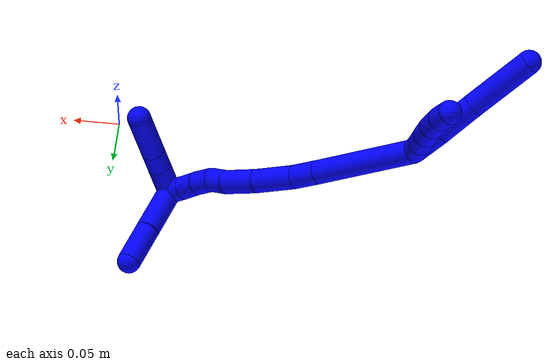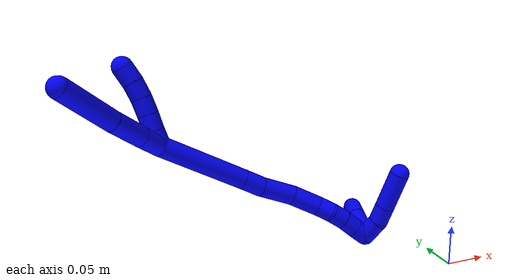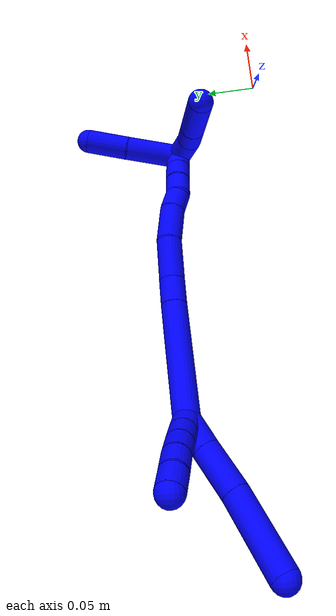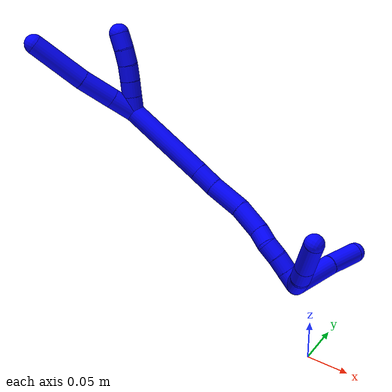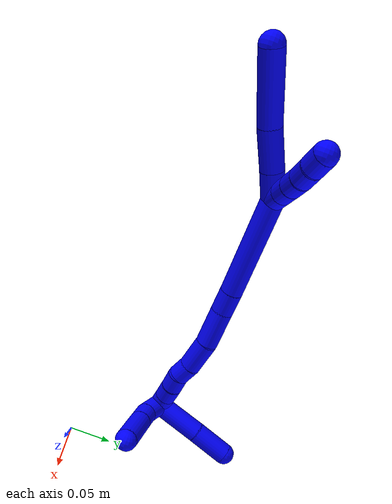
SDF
<sdf version="1.7">
 <world name="default">
  <model name="1">
   <static>0</static>
   <link name="1">
    <collision name="collision-cylinder-e_1_2_8">
     <pose>-0.009125 0.001832 0.013126 -0.1387 -0.60296 0.043192</pose>
     <geometry><cylinder><radius>0.0125</radius><length>0.032181</length></cylinder></geometry>
     <surface>
      <friction><ode><mu>1.16</mu><mu2>1.16</mu2><slip1>0</slip1><slip2>0</slip2></ode></friction>
      <contact><ode><kp>1e+06</kp><kd>1</kd><max_vel>0</max_vel><min_depth>0.001</min_depth></ode></contact>
     </surface>
    </collision>
    <visual name="visual-cylinder-e_1_2_8">
     <pose>-0.009125 0.001832 0.013126 -0.1387 -0.60296 0.043192</pose>
     <geometry><cylinder><radius>0.0125</radius><length>0.032181</length></cylinder></geometry>
     <material><ambient>0 0 1 1</ambient></material>
    </visual>
    <collision name="collision-cylinder-e_2_8_9">
     <pose>-0.031546 0.006201 0.043881 -0.142893 -0.641277 0.047526</pose>
     <geometry><cylinder><radius>0.0125</radius><length>0.044452</length></cylinder></geometry>
     <surface>
      <friction><ode><mu>1.16</mu><mu2>1.16</mu2><slip1>0</slip1><slip2>0</slip2></ode></friction>
      <contact><ode><kp>1e+06</kp><kd>1</kd><max_vel>0</max_vel><min_depth>0.001</min_depth></ode></contact>
     </surface>
    </collision>
    <visual name="visual-cylinder-e_2_8_9">
     <pose>-0.031546 0.006201 0.043881 -0.142893 -0.641277 0.047526</pose>
     <geometry><cylinder><radius>0.0125</radius><length>0.044452</length></cylinder></geometry>
     <material><ambient>0 0 1 1</ambient></material>
    </visual>
    <collision name="collision-cylinder-e_3_9_6">
     <pose>-0.066682 0.009643 0.090969 -0.030737 -0.637733 0.010148</pose>
     <geometry><cylinder><radius>0.0125</radius><length>0.073366</length></cylinder></geometry>
     <surface>
      <friction><ode><mu>1.16</mu><mu2>1.16</mu2><slip1>0</slip1><slip2>0</slip2></ode></friction>
      <contact><ode><kp>1e+06</kp><kd>1</kd><max_vel>0</max_vel><min_depth>0.001</min_depth></ode></contact>
     </surface>
    </collision>
    <visual name="visual-cylinder-e_3_9_6">
     <pose>-0.066682 0.009643 0.090969 -0.030737 -0.637733 0.010148</pose>
     <geometry><cylinder><radius>0.0125</radius><length>0.073366</length></cylinder></geometry>
     <material><ambient>0 0 1 1</ambient></material>
    </visual>
    <collision name="collision-cylinder-e_1_2_10">
     <pose>-0.005835 -0.006661 0.004646 0.961789 -0.623082 -0.332925</pose>
     <geometry><cylinder><radius>0.0125</radius><length>0.02</length></cylinder></geometry>
     <surface>
      <friction><ode><mu>1.16</mu><mu2>1.16</mu2><slip1>0</slip1><slip2>0</slip2></ode></friction>
      <contact><ode><kp>1e+06</kp><kd>1</kd><max_vel>0</max_vel><min_depth>0.001</min_depth></ode></contact>
     </surface>
    </collision>
    <visual name="visual-cylinder-e_1_2_10">
     <pose>-0.005835 -0.006661 0.004646 0.961789 -0.623082 -0.332925</pose>
     <geometry><cylinder><radius>0.0125</radius><length>0.02</length></cylinder></geometry>
     <material><ambient>0 0 1 1</ambient></material>
    </visual>
    <collision name="collision-cylinder-e_2_10_11">
     <pose>-0.017892 -0.019867 0.013588 0.989898 -0.67145 -0.372321</pose>
     <geometry><cylinder><radius>0.0125</radius><length>0.02</length></cylinder></geometry>
     <surface>
      <friction><ode><mu>1.16</mu><mu2>1.16</mu2><slip1>0</slip1><slip2>0</slip2></ode></friction>
      <contact><ode><kp>1e+06</kp><kd>1</kd><max_vel>0</max_vel><min_depth>0.001</min_depth></ode></contact>
     </surface>
    </collision>
    <visual name="visual-cylinder-e_2_10_11">
     <pose>-0.017892 -0.019867 0.013588 0.989898 -0.67145 -0.372321</pose>
     <geometry><cylinder><radius>0.0125</radius><length>0.02</length></cylinder></geometry>
     <material><ambient>0 0 1 1</ambient></material>
    </visual>
    <collision name="collision-cylinder-e_3_11_12">
     <pose>-0.0302 -0.032865 0.022499 0.949936 -0.654451 -0.345607</pose>
     <geometry><cylinder><radius>0.0125</radius><length>0.02</length></cylinder></geometry>
     <surface>
      <friction><ode><mu>1.16</mu><mu2>1.16</mu2><slip1>0</slip1><slip2>0</slip2></ode></friction>
      <contact><ode><kp>1e+06</kp><kd>1</kd><max_vel>0</max_vel><min_depth>0.001</min_depth></ode></contact>
     </surface>
    </collision>
    <visual name="visual-cylinder-e_3_11_12">
     <pose>-0.0302 -0.032865 0.022499 0.949936 -0.654451 -0.345607</pose>
     <geometry><cylinder><radius>0.0125</radius><length>0.02</length></cylinder></geometry>
     <material><ambient>0 0 1 1</ambient></material>
    </visual>
    <collision name="collision-cylinder-e_4_12_13">
     <pose>-0.042101 -0.045256 0.032678 0.817927 -0.620382 -0.276075</pose>
     <geometry><cylinder><radius>0.0125</radius><length>0.02</length></cylinder></geometry>
     <surface>
      <friction><ode><mu>1.16</mu><mu2>1.16</mu2><slip1>0</slip1><slip2>0</slip2></ode></friction>
      <contact><ode><kp>1e+06</kp><kd>1</kd><max_vel>0</max_vel><min_depth>0.001</min_depth></ode></contact>
     </surface>
    </collision>
    <visual name="visual-cylinder-e_4_12_13">
     <pose>-0.042101 -0.045256 0.032678 0.817927 -0.620382 -0.276075</pose>
     <geometry><cylinder><radius>0.0125</radius><length>0.02</length></cylinder></geometry>
     <material><ambient>0 0 1 1</ambient></material>
    </visual>
    <collision name="collision-cylinder-e_5_13_5">
     <pose>-0.052842 -0.05702 0.044705 0.733651 -0.515193 -0.201756</pose>
     <geometry><cylinder><radius>0.0125</radius><length>0.02</length></cylinder></geometry>
     <surface>
      <friction><ode><mu>1.16</mu><mu2>1.16</mu2><slip1>0</slip1><slip2>0</slip2></ode></friction>
      <contact><ode><kp>1e+06</kp><kd>1</kd><max_vel>0</max_vel><min_depth>0.001</min_depth></ode></contact>
     </surface>
    </collision>
    <visual name="visual-cylinder-e_5_13_5">
     <pose>-0.052842 -0.05702 0.044705 0.733651 -0.515193 -0.201756</pose>
     <geometry><cylinder><radius>0.0125</radius><length>0.02</length></cylinder></geometry>
     <material><ambient>0 0 1 1</ambient></material>
    </visual>
    <collision name="collision-cylinder-e_1_2_14">
     <pose>0.013713 0.009169 -0.053504 -2.97187 0.247445 -1.94175</pose>
     <geometry><cylinder><radius>0.0125</radius><length>0.111979</length></cylinder></geometry>
     <surface>
      <friction><ode><mu>1.16</mu><mu2>1.16</mu2><slip1>0</slip1><slip2>0</slip2></ode></friction>
      <contact><ode><kp>1e+06</kp><kd>1</kd><max_vel>0</max_vel><min_depth>0.001</min_depth></ode></contact>
     </surface>
    </collision>
    <visual name="visual-cylinder-e_1_2_14">
     <pose>0.013713 0.009169 -0.053504 -2.97187 0.247445 -1.94175</pose>
     <geometry><cylinder><radius>0.0125</radius><length>0.111979</length></cylinder></geometry>
     <material><ambient>0 0 1 1</ambient></material>
    </visual>
    <collision name="collision-cylinder-e_2_14_15">
     <pose>0.03063 0.020871 -0.119908 -2.94769 0.239042 -1.78016</pose>
     <geometry><cylinder><radius>0.0125</radius><length>0.027061</length></cylinder></geometry>
     <surface>
      <friction><ode><mu>1.16</mu><mu2>1.16</mu2><slip1>0</slip1><slip2>0</slip2></ode></friction>
      <contact><ode><kp>1e+06</kp><kd>1</kd><max_vel>0</max_vel><min_depth>0.001</min_depth></ode></contact>
     </surface>
    </collision>
    <visual name="visual-cylinder-e_2_14_15">
     <pose>0.03063 0.020871 -0.119908 -2.94769 0.239042 -1.78016</pose>
     <geometry><cylinder><radius>0.0125</radius><length>0.027061</length></cylinder></geometry>
     <material><ambient>0 0 1 1</ambient></material>
    </visual>
    <collision name="collision-cylinder-e_3_15_16">
     <pose>0.036812 0.026161 -0.154075 -3.01269 0.138 -1.63913</pose>
     <geometry><cylinder><radius>0.0125</radius><length>0.043302</length></cylinder></geometry>
     <surface>
      <friction><ode><mu>1.16</mu><mu2>1.16</mu2><slip1>0</slip1><slip2>0</slip2></ode></friction>
      <contact><ode><kp>1e+06</kp><kd>1</kd><max_vel>0</max_vel><min_depth>0.001</min_depth></ode></contact>
     </surface>
    </collision>
    <visual name="visual-cylinder-e_3_15_16">
     <pose>0.036812 0.026161 -0.154075 -3.01269 0.138 -1.63913</pose>
     <geometry><cylinder><radius>0.0125</radius><length>0.043302</length></cylinder></geometry>
     <material><ambient>0 0 1 1</ambient></material>
    </visual>
    <collision name="collision-cylinder-e_4_16_17">
     <pose>0.042003 0.03459 -0.192954 -2.82998 0.118984 -0.724876</pose>
     <geometry><cylinder><radius>0.0125</radius><length>0.03727</length></cylinder></geometry>
     <surface>
      <friction><ode><mu>1.16</mu><mu2>1.16</mu2><slip1>0</slip1><slip2>0</slip2></ode></friction>
      <contact><ode><kp>1e+06</kp><kd>1</kd><max_vel>0</max_vel><min_depth>0.001</min_depth></ode></contact>
     </surface>
    </collision>
    <visual name="visual-cylinder-e_4_16_17">
     <pose>0.042003 0.03459 -0.192954 -2.82998 0.118984 -0.724876</pose>
     <geometry><cylinder><radius>0.0125</radius><length>0.03727</length></cylinder></geometry>
     <material><ambient>0 0 1 1</ambient></material>
    </visual>
    <collision name="collision-cylinder-e_5_17_18">
     <pose>0.044309 0.04485 -0.219534 -2.66883 0.009392 -0.038986</pose>
     <geometry><cylinder><radius>0.0125</radius><length>0.020147</length></cylinder></geometry>
     <surface>
      <friction><ode><mu>1.16</mu><mu2>1.16</mu2><slip1>0</slip1><slip2>0</slip2></ode></friction>
      <contact><ode><kp>1e+06</kp><kd>1</kd><max_vel>0</max_vel><min_depth>0.001</min_depth></ode></contact>
     </surface>
    </collision>
    <visual name="visual-cylinder-e_5_17_18">
     <pose>0.044309 0.04485 -0.219534 -2.66883 0.009392 -0.038986</pose>
     <geometry><cylinder><radius>0.0125</radius><length>0.020147</length></cylinder></geometry>
     <material><ambient>0 0 1 1</ambient></material>
    </visual>
    <collision name="collision-cylinder-e_6_18_19">
     <pose>0.047212 0.052435 -0.237659 -2.82516 0.283597 -1.45979</pose>
     <geometry><cylinder><radius>0.0125</radius><length>0.020074</length></cylinder></geometry>
     <surface>
      <friction><ode><mu>1.16</mu><mu2>1.16</mu2><slip1>0</slip1><slip2>0</slip2></ode></friction>
      <contact><ode><kp>1e+06</kp><kd>1</kd><max_vel>0</max_vel><min_depth>0.001</min_depth></ode></contact>
     </surface>
    </collision>
    <visual name="visual-cylinder-e_6_18_19">
     <pose>0.047212 0.052435 -0.237659 -2.82516 0.283597 -1.45979</pose>
     <geometry><cylinder><radius>0.0125</radius><length>0.020074</length></cylinder></geometry>
     <material><ambient>0 0 1 1</ambient></material>
    </visual>
    <collision name="collision-cylinder-e_7_19_20">
     <pose>0.05361 0.059064 -0.255489 -2.74517 0.364636 -1.48528</pose>
     <geometry><cylinder><radius>0.0125</radius><length>0.020127</length></cylinder></geometry>
     <surface>
      <friction><ode><mu>1.16</mu><mu2>1.16</mu2><slip1>0</slip1><slip2>0</slip2></ode></friction>
      <contact><ode><kp>1e+06</kp><kd>1</kd><max_vel>0</max_vel><min_depth>0.001</min_depth></ode></contact>
     </surface>
    </collision>
    <visual name="visual-cylinder-e_7_19_20">
     <pose>0.05361 0.059064 -0.255489 -2.74517 0.364636 -1.48528</pose>
     <geometry><cylinder><radius>0.0125</radius><length>0.020127</length></cylinder></geometry>
     <material><ambient>0 0 1 1</ambient></material>
    </visual>
    <collision name="collision-cylinder-e_8_20_1">
     <pose>0.060459 0.066335 -0.27291 -2.74712 0.331391 -1.39361</pose>
     <geometry><cylinder><radius>0.0125</radius><length>0.020041</length></cylinder></geometry>
     <surface>
      <friction><ode><mu>1.16</mu><mu2>1.16</mu2><slip1>0</slip1><slip2>0</slip2></ode></friction>
      <contact><ode><kp>1e+06</kp><kd>1</kd><max_vel>0</max_vel><min_depth>0.001</min_depth></ode></contact>
     </surface>
    </collision>
    <visual name="visual-cylinder-e_8_20_1">
     <pose>0.060459 0.066335 -0.27291 -2.74712 0.331391 -1.39361</pose>
     <geometry><cylinder><radius>0.0125</radius><length>0.020041</length></cylinder></geometry>
     <material><ambient>0 0 1 1</ambient></material>
    </visual>
    <collision name="collision-cylinder-e_1_1_21">
     <pose>0.049784 0.067713 -0.285316 2.5874 -1.27136 -2.40577</pose>
     <geometry><cylinder><radius>0.0125</radius><length>0.029167</length></cylinder></geometry>
     <surface>
      <friction><ode><mu>1.16</mu><mu2>1.16</mu2><slip1>0</slip1><slip2>0</slip2></ode></friction>
      <contact><ode><kp>1e+06</kp><kd>1</kd><max_vel>0</max_vel><min_depth>0.001</min_depth></ode></contact>
     </surface>
    </collision>
    <visual name="visual-cylinder-e_1_1_21">
     <pose>0.049784 0.067713 -0.285316 2.5874 -1.27136 -2.40577</pose>
     <geometry><cylinder><radius>0.0125</radius><length>0.029167</length></cylinder></geometry>
     <material><ambient>0 0 1 1</ambient></material>
    </visual>
    <collision name="collision-cylinder-e_2_21_22">
     <pose>0.025732 0.060612 -0.290329 1.84398 -1.10997 -1.37072</pose>
     <geometry><cylinder><radius>0.0125</radius><length>0.022592</length></cylinder></geometry>
     <surface>
      <friction><ode><mu>1.16</mu><mu2>1.16</mu2><slip1>0</slip1><slip2>0</slip2></ode></friction>
      <contact><ode><kp>1e+06</kp><kd>1</kd><max_vel>0</max_vel><min_depth>0.001</min_depth></ode></contact>
     </surface>
    </collision>
    <visual name="visual-cylinder-e_2_21_22">
     <pose>0.025732 0.060612 -0.290329 1.84398 -1.10997 -1.37072</pose>
     <geometry><cylinder><radius>0.0125</radius><length>0.022592</length></cylinder></geometry>
     <material><ambient>0 0 1 1</ambient></material>
    </visual>
    <collision name="collision-cylinder-e_3_22_4">
     <pose>-0.005973 0.045387 -0.294492 1.8348 -1.10835 -1.35964</pose>
     <geometry><cylinder><radius>0.0125</radius><length>0.048241</length></cylinder></geometry>
     <surface>
      <friction><ode><mu>1.16</mu><mu2>1.16</mu2><slip1>0</slip1><slip2>0</slip2></ode></friction>
      <contact><ode><kp>1e+06</kp><kd>1</kd><max_vel>0</max_vel><min_depth>0.001</min_depth></ode></contact>
     </surface>
    </collision>
    <visual name="visual-cylinder-e_3_22_4">
     <pose>-0.005973 0.045387 -0.294492 1.8348 -1.10835 -1.35964</pose>
     <geometry><cylinder><radius>0.0125</radius><length>0.048241</length></cylinder></geometry>
     <material><ambient>0 0 1 1</ambient></material>
    </visual>
    <collision name="collision-cylinder-e_1_1_23">
     <pose>0.077363 0.046111 -0.288539 1.85153 0.502318 0.657296</pose>
     <geometry><cylinder><radius>0.0125</radius><length>0.056678</length></cylinder></geometry>
     <surface>
      <friction><ode><mu>1.16</mu><mu2>1.16</mu2><slip1>0</slip1><slip2>0</slip2></ode></friction>
      <contact><ode><kp>1e+06</kp><kd>1</kd><max_vel>0</max_vel><min_depth>0.001</min_depth></ode></contact>
     </surface>
    </collision>
    <visual name="visual-cylinder-e_1_1_23">
     <pose>0.077363 0.046111 -0.288539 1.85153 0.502318 0.657296</pose>
     <geometry><cylinder><radius>0.0125</radius><length>0.056678</length></cylinder></geometry>
     <material><ambient>0 0 1 1</ambient></material>
    </visual>
    <collision name="collision-cylinder-e_2_23_3">
     <pose>0.102591 0.004992 -0.301531 1.91116 0.564274 0.77848</pose>
     <geometry><cylinder><radius>0.0125</radius><length>0.043322</length></cylinder></geometry>
     <surface>
      <friction><ode><mu>1.16</mu><mu2>1.16</mu2><slip1>0</slip1><slip2>0</slip2></ode></friction>
      <contact><ode><kp>1e+06</kp><kd>1</kd><max_vel>0</max_vel><min_depth>0.001</min_depth></ode></contact>
     </surface>
    </collision>
    <visual name="visual-cylinder-e_2_23_3">
     <pose>0.102591 0.004992 -0.301531 1.91116 0.564274 0.77848</pose>
     <geometry><cylinder><radius>0.0125</radius><length>0.043322</length></cylinder></geometry>
     <material><ambient>0 0 1 1</ambient></material>
    </visual>
    <collision name="collision-sphere-3">
     <pose>0.114176 -0.012261 -0.307641 0 -0 0</pose>
     <geometry><sphere><radius>0.0125</radius></sphere></geometry>
     <surface>
      <friction><ode><mu>1.16</mu><mu2>1.16</mu2><slip1>0</slip1><slip2>0</slip2></ode></friction>
      <contact><ode><kp>1e+06</kp><kd>1</kd><max_vel>0</max_vel><min_depth>0.001</min_depth></ode></contact>
     </surface>
    </collision>
    <visual name="visual-sphere-3">
     <pose>0.114176 -0.012261 -0.307641 0 -0 0</pose>
     <geometry><sphere><radius>0.0125</radius></sphere></geometry>
     <material><ambient>0 0 1 1</ambient></material>
    </visual>
    <collision name="collision-sphere-23">
     <pose>0.091007 0.022245 -0.295421 0 -0 0</pose>
     <geometry><sphere><radius>0.0125</radius></sphere></geometry>
     <surface>
      <friction><ode><mu>1.16</mu><mu2>1.16</mu2><slip1>0</slip1><slip2>0</slip2></ode></friction>
      <contact><ode><kp>1e+06</kp><kd>1</kd><max_vel>0</max_vel><min_depth>0.001</min_depth></ode></contact>
     </surface>
    </collision>
    <visual name="visual-sphere-23">
     <pose>0.091007 0.022245 -0.295421 0 -0 0</pose>
     <geometry><sphere><radius>0.0125</radius></sphere></geometry>
     <material><ambient>0 0 1 1</ambient></material>
    </visual>
    <collision name="collision-sphere-4">
     <pose>-0.02756 0.034999 -0.2973 0 -0 0</pose>
     <geometry><sphere><radius>0.0125</radius></sphere></geometry>
     <surface>
      <friction><ode><mu>1.16</mu><mu2>1.16</mu2><slip1>0</slip1><slip2>0</slip2></ode></friction>
      <contact><ode><kp>1e+06</kp><kd>1</kd><max_vel>0</max_vel><min_depth>0.001</min_depth></ode></contact>
     </surface>
    </collision>
    <visual name="visual-sphere-4">
     <pose>-0.02756 0.034999 -0.2973 0 -0 0</pose>
     <geometry><sphere><radius>0.0125</radius></sphere></geometry>
     <material><ambient>0 0 1 1</ambient></material>
    </visual>
    <collision name="collision-sphere-22">
     <pose>0.015614 0.055775 -0.291684 0 -0 0</pose>
     <geometry><sphere><radius>0.0125</radius></sphere></geometry>
     <surface>
      <friction><ode><mu>1.16</mu><mu2>1.16</mu2><slip1>0</slip1><slip2>0</slip2></ode></friction>
      <contact><ode><kp>1e+06</kp><kd>1</kd><max_vel>0</max_vel><min_depth>0.001</min_depth></ode></contact>
     </surface>
    </collision>
    <visual name="visual-sphere-22">
     <pose>0.015614 0.055775 -0.291684 0 -0 0</pose>
     <geometry><sphere><radius>0.0125</radius></sphere></geometry>
     <material><ambient>0 0 1 1</ambient></material>
    </visual>
    <collision name="collision-sphere-21">
     <pose>0.035849 0.065449 -0.288974 0 -0 0</pose>
     <geometry><sphere><radius>0.0125</radius></sphere></geometry>
     <surface>
      <friction><ode><mu>1.16</mu><mu2>1.16</mu2><slip1>0</slip1><slip2>0</slip2></ode></friction>
      <contact><ode><kp>1e+06</kp><kd>1</kd><max_vel>0</max_vel><min_depth>0.001</min_depth></ode></contact>
     </surface>
    </collision>
    <visual name="visual-sphere-21">
     <pose>0.035849 0.065449 -0.288974 0 -0 0</pose>
     <geometry><sphere><radius>0.0125</radius></sphere></geometry>
     <material><ambient>0 0 1 1</ambient></material>
    </visual>
    <collision name="collision-sphere-1">
     <pose>0.063719 0.069977 -0.281657 0 -0 0</pose>
     <geometry><sphere><radius>0.0125</radius></sphere></geometry>
     <surface>
      <friction><ode><mu>1.16</mu><mu2>1.16</mu2><slip1>0</slip1><slip2>0</slip2></ode></friction>
      <contact><ode><kp>1e+06</kp><kd>1</kd><max_vel>0</max_vel><min_depth>0.001</min_depth></ode></contact>
     </surface>
    </collision>
    <visual name="visual-sphere-1">
     <pose>0.063719 0.069977 -0.281657 0 -0 0</pose>
     <geometry><sphere><radius>0.0125</radius></sphere></geometry>
     <material><ambient>0 0 1 1</ambient></material>
    </visual>
    <collision name="collision-sphere-11">
     <pose>-0.024113 -0.026412 0.017884 0 -0 0</pose>
     <geometry><sphere><radius>0.0125</radius></sphere></geometry>
     <surface>
      <friction><ode><mu>1.16</mu><mu2>1.16</mu2><slip1>0</slip1><slip2>0</slip2></ode></friction>
      <contact><ode><kp>1e+06</kp><kd>1</kd><max_vel>0</max_vel><min_depth>0.001</min_depth></ode></contact>
     </surface>
    </collision>
    <visual name="visual-sphere-11">
     <pose>-0.024113 -0.026412 0.017884 0 -0 0</pose>
     <geometry><sphere><radius>0.0125</radius></sphere></geometry>
     <material><ambient>0 0 1 1</ambient></material>
    </visual>
    <collision name="collision-sphere-10">
     <pose>-0.011671 -0.013322 0.009291 0 -0 0</pose>
     <geometry><sphere><radius>0.0125</radius></sphere></geometry>
     <surface>
      <friction><ode><mu>1.16</mu><mu2>1.16</mu2><slip1>0</slip1><slip2>0</slip2></ode></friction>
      <contact><ode><kp>1e+06</kp><kd>1</kd><max_vel>0</max_vel><min_depth>0.001</min_depth></ode></contact>
     </surface>
    </collision>
    <visual name="visual-sphere-10">
     <pose>-0.011671 -0.013322 0.009291 0 -0 0</pose>
     <geometry><sphere><radius>0.0125</radius></sphere></geometry>
     <material><ambient>0 0 1 1</ambient></material>
    </visual>
    <collision name="collision-sphere-6">
     <pose>-0.088522 0.010549 0.120428 0 -0 0</pose>
     <geometry><sphere><radius>0.0125</radius></sphere></geometry>
     <surface>
      <friction><ode><mu>1.16</mu><mu2>1.16</mu2><slip1>0</slip1><slip2>0</slip2></ode></friction>
      <contact><ode><kp>1e+06</kp><kd>1</kd><max_vel>0</max_vel><min_depth>0.001</min_depth></ode></contact>
     </surface>
    </collision>
    <visual name="visual-sphere-6">
     <pose>-0.088522 0.010549 0.120428 0 -0 0</pose>
     <geometry><sphere><radius>0.0125</radius></sphere></geometry>
     <material><ambient>0 0 1 1</ambient></material>
    </visual>
    <collision name="collision-sphere-9">
     <pose>-0.044842 0.008737 0.06151 0 -0 0</pose>
     <geometry><sphere><radius>0.0125</radius></sphere></geometry>
     <surface>
      <friction><ode><mu>1.16</mu><mu2>1.16</mu2><slip1>0</slip1><slip2>0</slip2></ode></friction>
      <contact><ode><kp>1e+06</kp><kd>1</kd><max_vel>0</max_vel><min_depth>0.001</min_depth></ode></contact>
     </surface>
    </collision>
    <visual name="visual-sphere-9">
     <pose>-0.044842 0.008737 0.06151 0 -0 0</pose>
     <geometry><sphere><radius>0.0125</radius></sphere></geometry>
     <material><ambient>0 0 1 1</ambient></material>
    </visual>
    <collision name="collision-sphere-2">
     <geometry><sphere><radius>0.0125</radius></sphere></geometry>
     <surface>
      <friction><ode><mu>1.16</mu><mu2>1.16</mu2><slip1>0</slip1><slip2>0</slip2></ode></friction>
      <contact><ode><kp>1e+06</kp><kd>1</kd><max_vel>0</max_vel><min_depth>0.001</min_depth></ode></contact>
     </surface>
    </collision>
    <visual name="visual-sphere-2">
     <geometry><sphere><radius>0.0125</radius></sphere></geometry>
     <material><ambient>0 0 1 1</ambient></material>
    </visual>
    <collision name="collision-sphere-19">
     <pose>0.050021 0.055433 -0.246817 0 -0 0</pose>
     <geometry><sphere><radius>0.0125</radius></sphere></geometry>
     <surface>
      <friction><ode><mu>1.16</mu><mu2>1.16</mu2><slip1>0</slip1><slip2>0</slip2></ode></friction>
      <contact><ode><kp>1e+06</kp><kd>1</kd><max_vel>0</max_vel><min_depth>0.001</min_depth></ode></contact>
     </surface>
    </collision>
    <visual name="visual-sphere-19">
     <pose>0.050021 0.055433 -0.246817 0 -0 0</pose>
     <geometry><sphere><radius>0.0125</radius></sphere></geometry>
     <material><ambient>0 0 1 1</ambient></material>
    </visual>
    <collision name="collision-sphere-8">
     <pose>-0.018249 0.003665 0.026252 0 -0 0</pose>
     <geometry><sphere><radius>0.0125</radius></sphere></geometry>
     <surface>
      <friction><ode><mu>1.16</mu><mu2>1.16</mu2><slip1>0</slip1><slip2>0</slip2></ode></friction>
      <contact><ode><kp>1e+06</kp><kd>1</kd><max_vel>0</max_vel><min_depth>0.001</min_depth></ode></contact>
     </surface>
    </collision>
    <visual name="visual-sphere-8">
     <pose>-0.018249 0.003665 0.026252 0 -0 0</pose>
     <geometry><sphere><radius>0.0125</radius></sphere></geometry>
     <material><ambient>0 0 1 1</ambient></material>
    </visual>
    <collision name="collision-sphere-12">
     <pose>-0.036288 -0.039318 0.027115 0 -0 0</pose>
     <geometry><sphere><radius>0.0125</radius></sphere></geometry>
     <surface>
      <friction><ode><mu>1.16</mu><mu2>1.16</mu2><slip1>0</slip1><slip2>0</slip2></ode></friction>
      <contact><ode><kp>1e+06</kp><kd>1</kd><max_vel>0</max_vel><min_depth>0.001</min_depth></ode></contact>
     </surface>
    </collision>
    <visual name="visual-sphere-12">
     <pose>-0.036288 -0.039318 0.027115 0 -0 0</pose>
     <geometry><sphere><radius>0.0125</radius></sphere></geometry>
     <material><ambient>0 0 1 1</ambient></material>
    </visual>
    <collision name="collision-sphere-13">
     <pose>-0.047915 -0.051193 0.038241 0 -0 0</pose>
     <geometry><sphere><radius>0.0125</radius></sphere></geometry>
     <surface>
      <friction><ode><mu>1.16</mu><mu2>1.16</mu2><slip1>0</slip1><slip2>0</slip2></ode></friction>
      <contact><ode><kp>1e+06</kp><kd>1</kd><max_vel>0</max_vel><min_depth>0.001</min_depth></ode></contact>
     </surface>
    </collision>
    <visual name="visual-sphere-13">
     <pose>-0.047915 -0.051193 0.038241 0 -0 0</pose>
     <geometry><sphere><radius>0.0125</radius></sphere></geometry>
     <material><ambient>0 0 1 1</ambient></material>
    </visual>
    <collision name="collision-sphere-5">
     <pose>-0.057769 -0.062846 0.051168 0 -0 0</pose>
     <geometry><sphere><radius>0.0125</radius></sphere></geometry>
     <surface>
      <friction><ode><mu>1.16</mu><mu2>1.16</mu2><slip1>0</slip1><slip2>0</slip2></ode></friction>
      <contact><ode><kp>1e+06</kp><kd>1</kd><max_vel>0</max_vel><min_depth>0.001</min_depth></ode></contact>
     </surface>
    </collision>
    <visual name="visual-sphere-5">
     <pose>-0.057769 -0.062846 0.051168 0 -0 0</pose>
     <geometry><sphere><radius>0.0125</radius></sphere></geometry>
     <material><ambient>0 0 1 1</ambient></material>
    </visual>
    <collision name="collision-sphere-14">
     <pose>0.027427 0.018338 -0.107009 0 -0 0</pose>
     <geometry><sphere><radius>0.0125</radius></sphere></geometry>
     <surface>
      <friction><ode><mu>1.16</mu><mu2>1.16</mu2><slip1>0</slip1><slip2>0</slip2></ode></friction>
      <contact><ode><kp>1e+06</kp><kd>1</kd><max_vel>0</max_vel><min_depth>0.001</min_depth></ode></contact>
     </surface>
    </collision>
    <visual name="visual-sphere-14">
     <pose>0.027427 0.018338 -0.107009 0 -0 0</pose>
     <geometry><sphere><radius>0.0125</radius></sphere></geometry>
     <material><ambient>0 0 1 1</ambient></material>
    </visual>
    <collision name="collision-sphere-15">
     <pose>0.033834 0.023404 -0.132808 0 -0 0</pose>
     <geometry><sphere><radius>0.0125</radius></sphere></geometry>
     <surface>
      <friction><ode><mu>1.16</mu><mu2>1.16</mu2><slip1>0</slip1><slip2>0</slip2></ode></friction>
      <contact><ode><kp>1e+06</kp><kd>1</kd><max_vel>0</max_vel><min_depth>0.001</min_depth></ode></contact>
     </surface>
    </collision>
    <visual name="visual-sphere-15">
     <pose>0.033834 0.023404 -0.132808 0 -0 0</pose>
     <geometry><sphere><radius>0.0125</radius></sphere></geometry>
     <material><ambient>0 0 1 1</ambient></material>
    </visual>
    <collision name="collision-sphere-16">
     <pose>0.039791 0.028917 -0.175342 0 -0 0</pose>
     <geometry><sphere><radius>0.0125</radius></sphere></geometry>
     <surface>
      <friction><ode><mu>1.16</mu><mu2>1.16</mu2><slip1>0</slip1><slip2>0</slip2></ode></friction>
      <contact><ode><kp>1e+06</kp><kd>1</kd><max_vel>0</max_vel><min_depth>0.001</min_depth></ode></contact>
     </surface>
    </collision>
    <visual name="visual-sphere-16">
     <pose>0.039791 0.028917 -0.175342 0 -0 0</pose>
     <geometry><sphere><radius>0.0125</radius></sphere></geometry>
     <material><ambient>0 0 1 1</ambient></material>
    </visual>
    <collision name="collision-sphere-17">
     <pose>0.044215 0.040263 -0.210566 0 -0 0</pose>
     <geometry><sphere><radius>0.0125</radius></sphere></geometry>
     <surface>
      <friction><ode><mu>1.16</mu><mu2>1.16</mu2><slip1>0</slip1><slip2>0</slip2></ode></friction>
      <contact><ode><kp>1e+06</kp><kd>1</kd><max_vel>0</max_vel><min_depth>0.001</min_depth></ode></contact>
     </surface>
    </collision>
    <visual name="visual-sphere-17">
     <pose>0.044215 0.040263 -0.210566 0 -0 0</pose>
     <geometry><sphere><radius>0.0125</radius></sphere></geometry>
     <material><ambient>0 0 1 1</ambient></material>
    </visual>
    <collision name="collision-sphere-18">
     <pose>0.044404 0.049436 -0.228502 0 -0 0</pose>
     <geometry><sphere><radius>0.0125</radius></sphere></geometry>
     <surface>
      <friction><ode><mu>1.16</mu><mu2>1.16</mu2><slip1>0</slip1><slip2>0</slip2></ode></friction>
      <contact><ode><kp>1e+06</kp><kd>1</kd><max_vel>0</max_vel><min_depth>0.001</min_depth></ode></contact>
     </surface>
    </collision>
    <visual name="visual-sphere-18">
     <pose>0.044404 0.049436 -0.228502 0 -0 0</pose>
     <geometry><sphere><radius>0.0125</radius></sphere></geometry>
     <material><ambient>0 0 1 1</ambient></material>
    </visual>
    <collision name="collision-sphere-20">
     <pose>0.057198 0.062694 -0.264162 0 -0 0</pose>
     <geometry><sphere><radius>0.0125</radius></sphere></geometry>
     <surface>
      <friction><ode><mu>1.16</mu><mu2>1.16</mu2><slip1>0</slip1><slip2>0</slip2></ode></friction>
      <contact><ode><kp>1e+06</kp><kd>1</kd><max_vel>0</max_vel><min_depth>0.001</min_depth></ode></contact>
     </surface>
    </collision>
    <visual name="visual-sphere-20">
     <pose>0.057198 0.062694 -0.264162 0 -0 0</pose>
     <geometry><sphere><radius>0.0125</radius></sphere></geometry>
     <material><ambient>0 0 1 1</ambient></material>
    </visual>
    <inertial>
     <pose>0.014219 0.019547 -0.119999 0 -0 0</pose>
     <mass>0.75</mass>
     <inertia>
      <ixx>-0.000106</ixx>
      <ixy>0</ixy>
      <ixz>0</ixz>
      <iyy>-1.6e-05</iyy>
      <iyz>0</iyz>
      <izz>-6e-06</izz>
     </inertia>
    </inertial>
   </link>
   <pose>-0.325611 0.124406 0.155898 -1.24343 0.934442 1.79947</pose>
  </model>
 </world>
</sdf>
